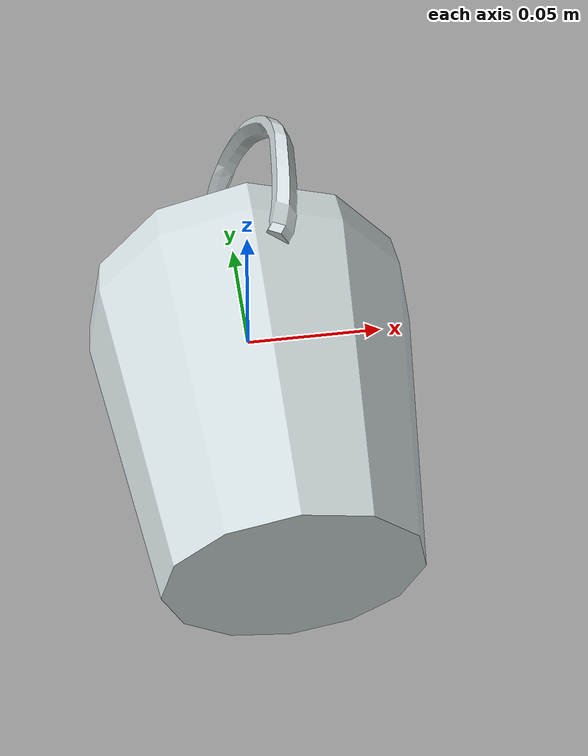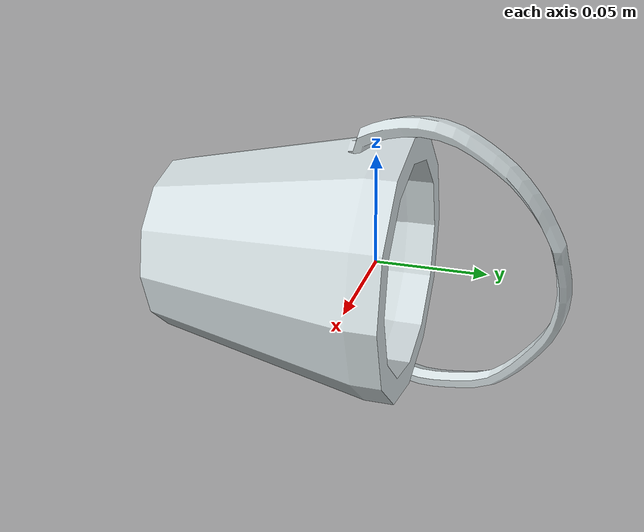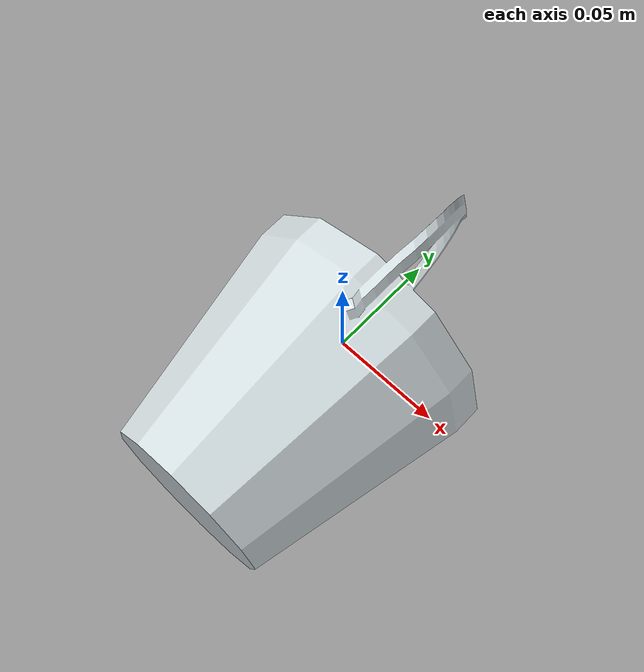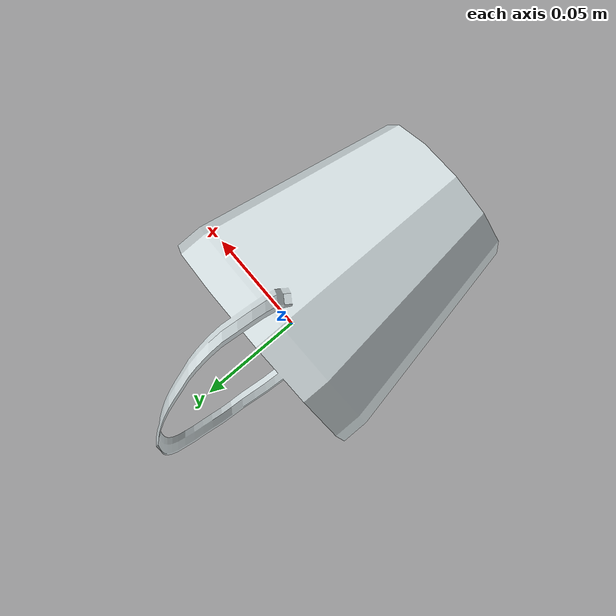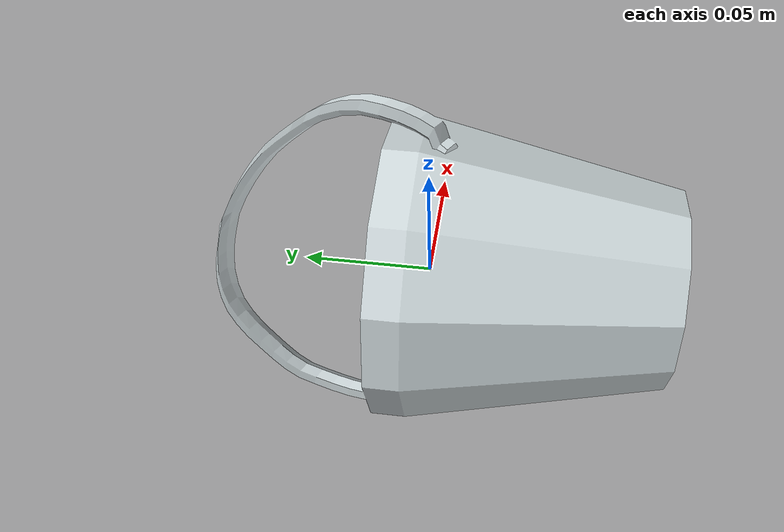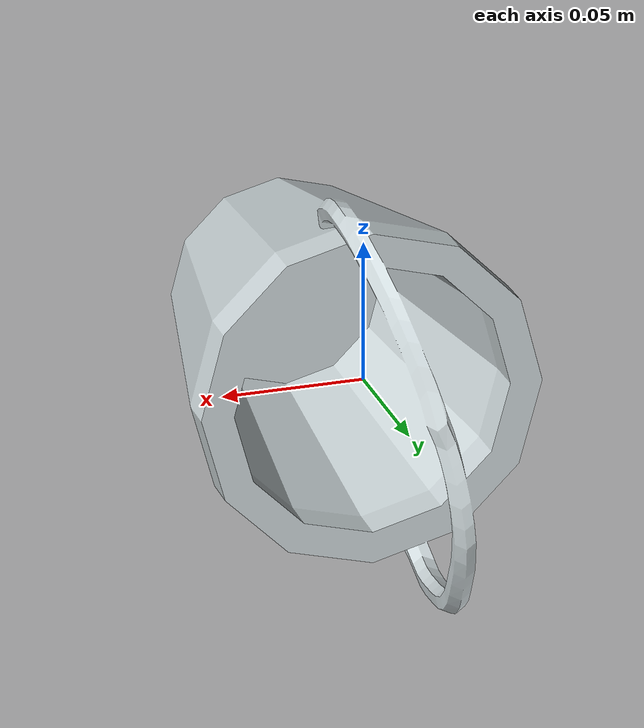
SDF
<sdf version='1.6'>
	<world name='default'>
	<gravity>0 0 -9.8</gravity>
		<model name='part0.obj'>
			<static>1</static>
			<pose frame=''>0 0 0 0 0 0</pose>
			<link name='link_d0'>
			<inertial>
			<mass>0</mass>
			<inertia>
			<ixx>0.166667</ixx>
			<ixy>0</ixy>
			<ixz>0</ixz>
			<iyy>0.166667</iyy>
			<iyz>0</iyz>
			<izz>0.166667</izz>
			</inertia>
			</inertial>
			<collision name='collision_0'>
			<geometry>
			<mesh>
			<scale>1 1 1</scale>
				<uri>part0.obj</uri>
			</mesh>
			</geometry>
			  </collision>
			<visual name='visual'>
				<geometry>
				<mesh>
					<scale>1 1 1</scale>
					<uri>part0.obj</uri>
				</mesh>
				</geometry>
			<material>
				<ambient>1 0 0 1</ambient>
				<diffuse>0.810000 0.850000 0.860000 1.000000</diffuse>
				<specular>0.1 0.1 0.1 1</specular>
				<emissive>0 0 0 0</emissive>
			 </material>
			 </visual>
			 </link>
			</model>
	</world>
</sdf>
